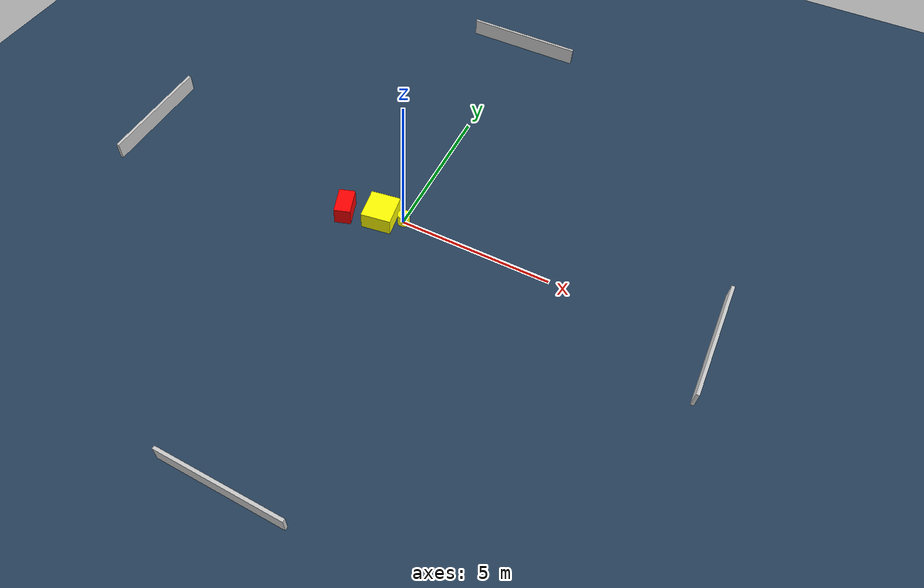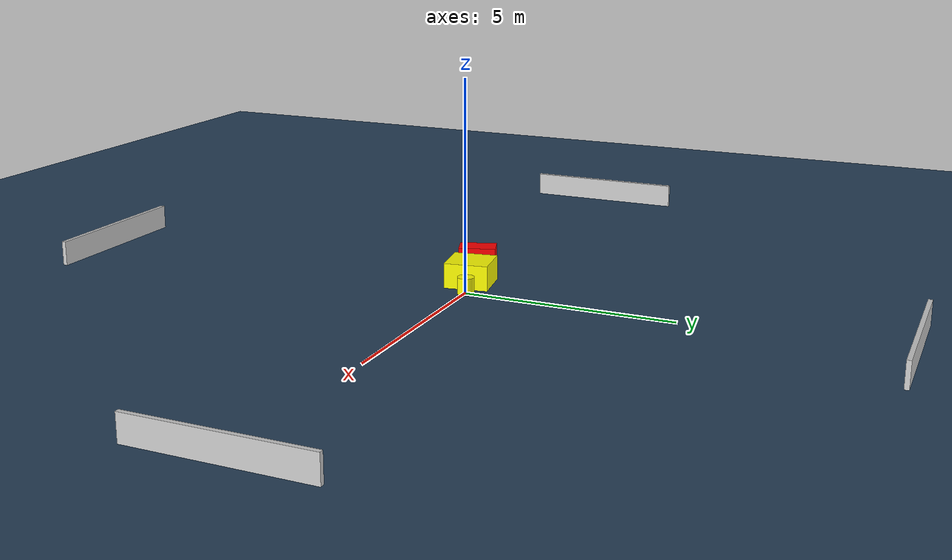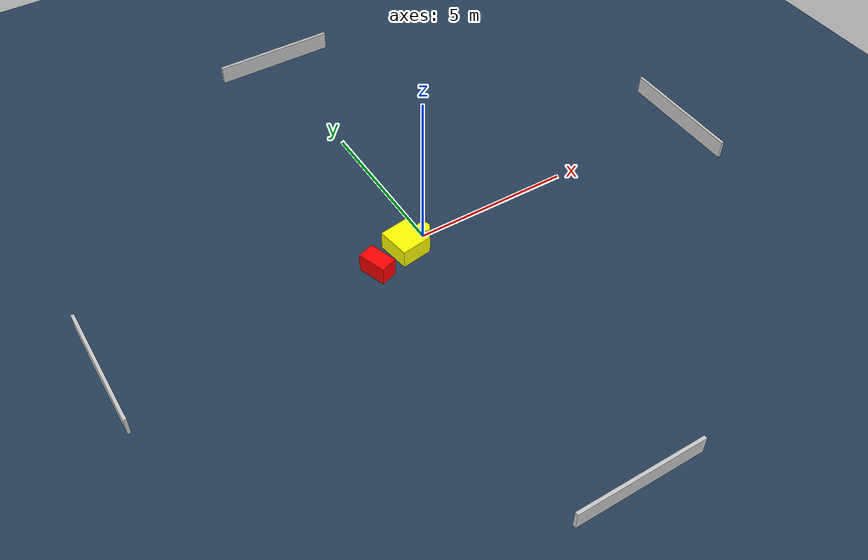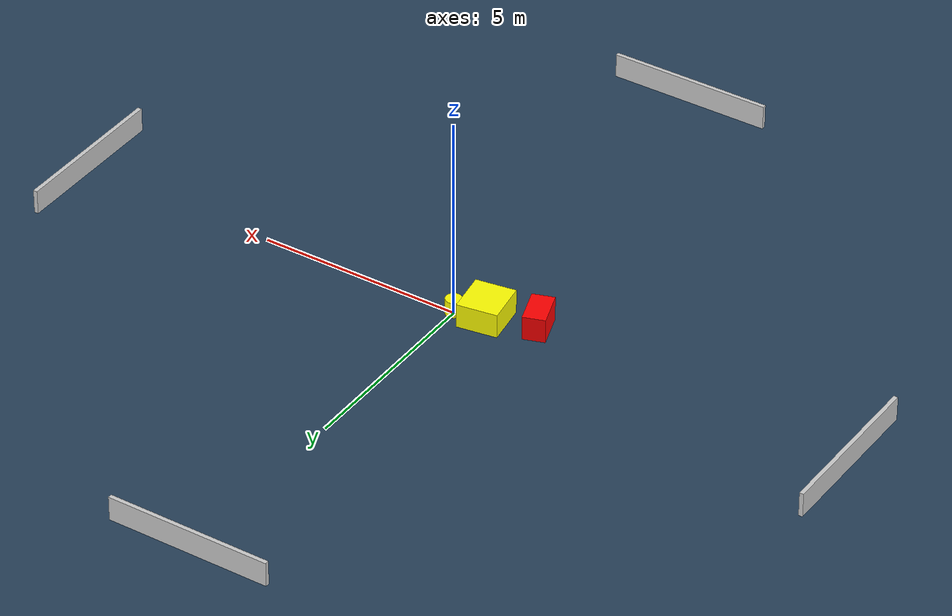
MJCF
<?xml version="1.0" ?>
<mujoco model="generated_environment">
  <option timestep="0.01" integrator="RK4" cone="elliptic"/>
  <default>
    <geom density="1"/>
  </default>
  <asset>
    <texture builtin="gradient" height="3072" name="skybox" rgb1="0.3 0.5 0.7" rgb2="0 0 0" type="skybox" width="512"/>
    <texture builtin="checker" height="300" name="groundplane" rgb1="0.2 0.3 0.4" rgb2="0.1 0.2 0.3" type="2d" width="300"/>
    <material name="groundplane" reflectance="0.2" texrepeat="5 5" texture="groundplane"/>
  </asset>
  <worldbody>
    <light dir="0 0 -1" directional="true" pos="0 0 1.5"/>
    <geom condim="3" friction="0.5 0.005 0.001" material="groundplane" name="floor" pos="0 0 0" size="0 0 0.05" type="plane"/>
    <body name="walls">
      <geom name="wall_1" condim="4" pos="-10.0 0.0 0.3" rgba="0.800000011920929 0.800000011920929 0.800000011920929 1.0" size="0.05 2.0 0.3" type="box"/>
      <geom name="wall_2" condim="4" pos="10.0 0.0 0.3" rgba="0.800000011920929 0.800000011920929 0.800000011920929 1.0" size="0.05 2.0 0.3" type="box"/>
      <geom name="wall_3" condim="4" pos="0.0 -10.0 0.3" rgba="0.800000011920929 0.800000011920929 0.800000011920929 1.0" size="2.0 0.05 0.3" type="box"/>
      <geom name="wall_4" condim="4" pos="0.0 10.0 0.3" rgba="0.800000011920929 0.800000011920929 0.800000011920929 1.0" size="2.0 0.05 0.3" type="box"/>
    </body>
    <body name="robot">
      <joint name="joint_x" type="slide" pos="0 0 0" axis="1 0 0"/>
      <joint name="joint_y" type="slide" pos="0 0 0" axis="0 1 0"/>
      <geom name="robot" type="cylinder" pos="0.0 0.0 0.2" size="0.2 0.2 0.0" mass="5.0" friction="1.0 0.005 0.0001" condim="4" rgba="1.0 1.0 0.0 1.0"/>
    </body>
    <body name="obstacle_1_movable">
      <geom name="obstacle_1_movable" condim="4" pos="-0.7259910513800079 -0.19544699881898597 0.3" euler="0 0 8.867813201550314" friction="0.0 0.005 0.001" rgba="1.0 1.0 0.0 1.0" size="0.49110949521333364 0.5207875361234924 0.3" type="box" mass="0.1"/>
      <joint type="free"/>
    </body>
    <body name="obstacle_2_static">
      <geom name="obstacle_2_static" condim="4" pos="-1.8776265756251056 -0.5236829337225448 0.3" euler="0 0 288.83242599294374" friction="0.0 0.005 0.001" rgba="1.0 0.0 0.0 1.0" size="0.44990950670564545 0.2681099754210673 0.3" type="box"/>
    </body>
  </worldbody>
  <actuator>
    <motor name="actuator_x" joint="joint_x" gear="1" ctrlrange="-1 1"/>
    <motor name="actuator_y" joint="joint_y" gear="1" ctrlrange="-1 1"/>
  </actuator>
</mujoco>
